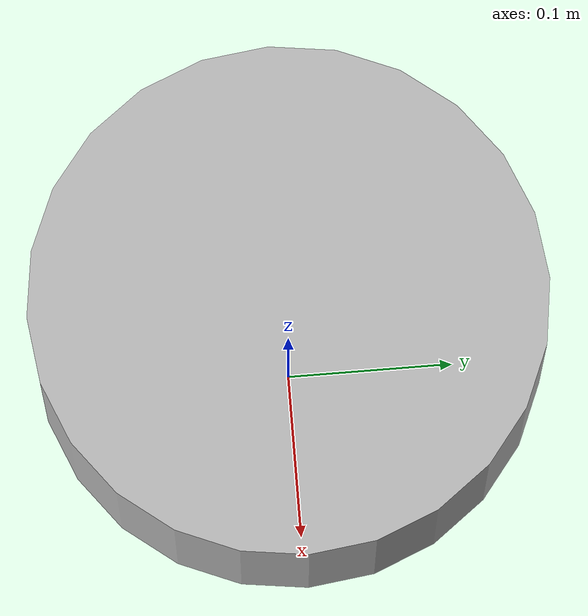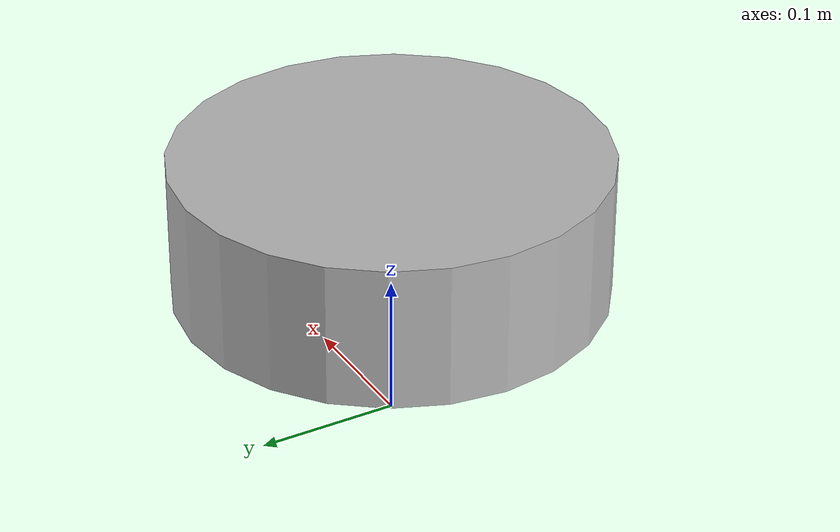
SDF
<?xml version="1.0"?>
<sdf version="1.9">
  <model name="mybot_cpu">
    <static>false</static>

    <link name="base_link">
      <pose>0 0 0.15 0 0 0</pose>
      <inertial>
        <mass>1.0</mass>
        <inertia>
          <ixx>0.05</ixx><iyy>0.05</iyy><izz>0.08</izz>
        </inertia>
      </inertial>

      <collision name="col">
        <geometry><cylinder><radius>0.15</radius><length>0.10</length></cylinder></geometry>
      </collision>
      <visual name="vis">
        <geometry><cylinder><radius>0.15</radius><length>0.10</length></cylinder></geometry>
      </visual>
    </link>

    <!-- IMU system plugin -->
    <plugin name="gz::sim::systems::Imu" filename="gz-sim-imu-system">
      <parent_link>base_link</parent_link>
      <update_rate>50</update_rate>
      <topic>/imu</topic>
    </plugin>

    <!-- CPU ray lidar system plugin -->
    <plugin name="gz::sim::systems::RaySensor" filename="gz-sim-ray-sensor-system">
      <parent_link>base_link</parent_link>
      <update_rate>10</update_rate>
      <horizontal_samples>720</horizontal_samples>
      <horizontal_resolution>1</horizontal_resolution>
      <horizontal_min_angle>-3.14159</horizontal_min_angle>
      <horizontal_max_angle>3.14159</horizontal_max_angle>
      <vertical_samples>1</vertical_samples>
      <vertical_min_angle>0.0</vertical_min_angle>
      <vertical_max_angle>0.0</vertical_max_angle>
      <range_min>0.12</range_min>
      <range_max>10.0</range_max>
      <range_resolution>0.01</range_resolution>
      <topic>/world/empty_world/model/mybot_cpu/link/base_link/sensor/lidar/scan
      </topic>
    </plugin>
  </model>
</sdf>
